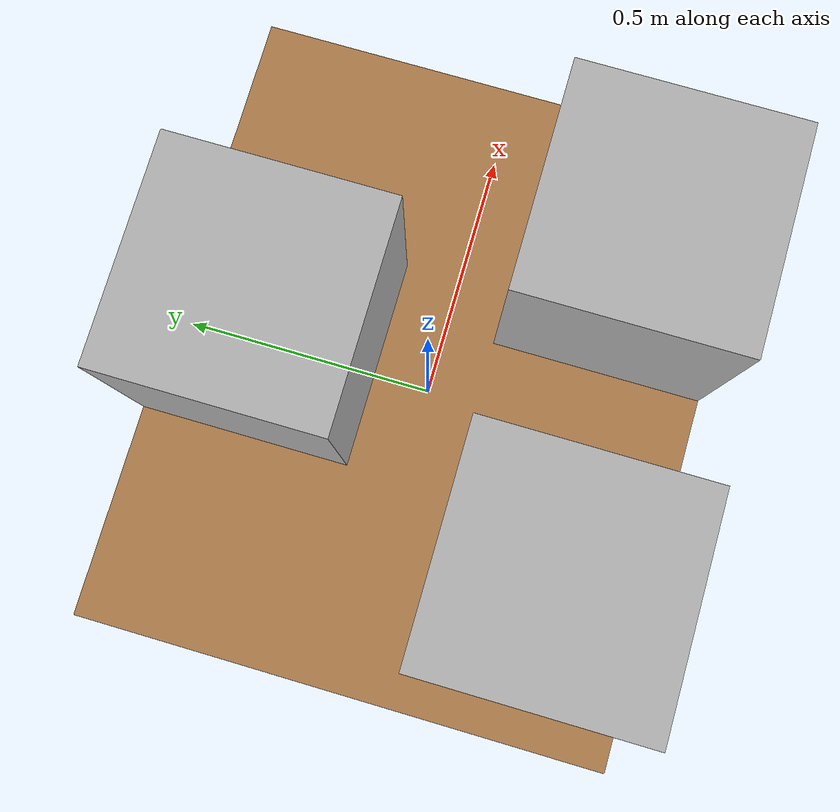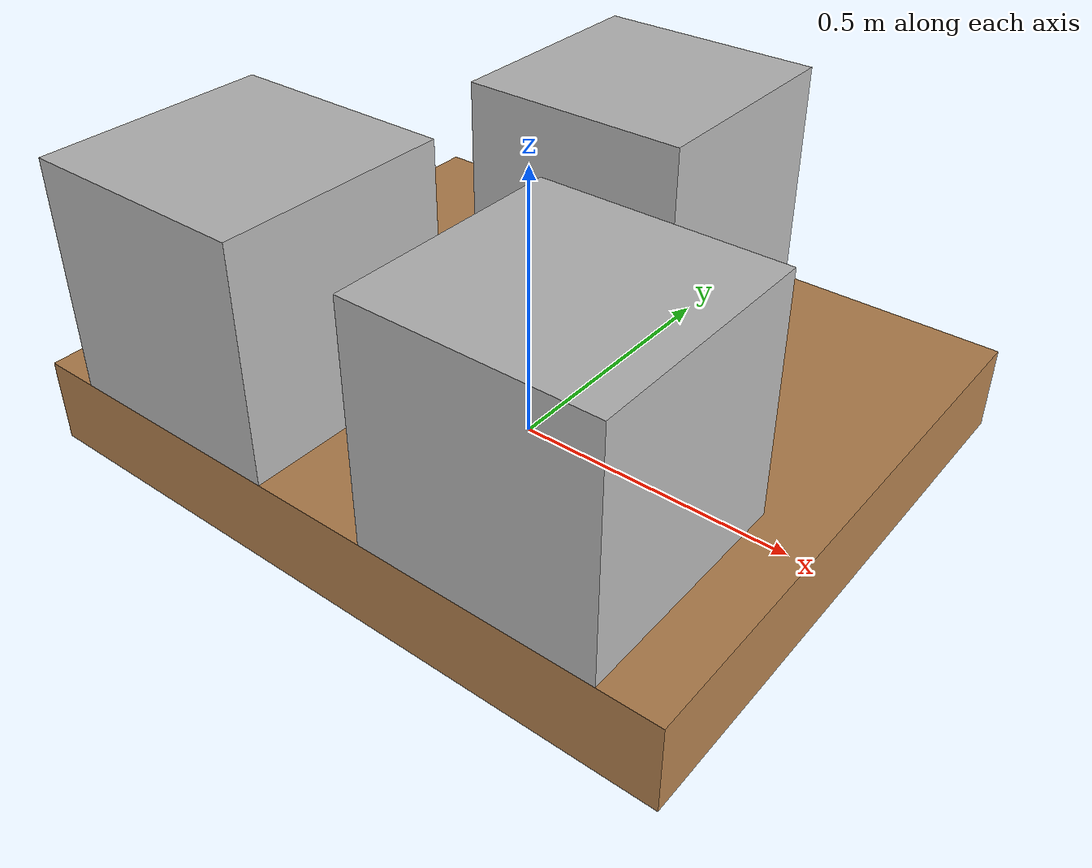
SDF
<?xml version="1.0" ?>
<sdf version="1.6">
  <model name="wooden_pallet_with_boxes">
    <static>true</static>

    <link name="pallet">
      <visual name="pallet_visual">
        <geometry>
          <box>
            <size>1.2 1.0 0.15</size>
          </box>
        </geometry>
        <material>
          <script>
            <uri>model://wooden_pallet_with_boxes/textures</uri>
            <name>pallet_wood</name>
          </script>
        </material>
        <pose>0 0 0.075 0 0 0</pose>
      </visual>
      <collision name="pallet_collision">
        <geometry>
          <box>
            <size>1.2 1.0 0.15</size>
          </box>
        </geometry>
        <pose>0 0 0.075 0 0 0</pose>
      </collision>
    </link>

    <link name="box1">
      <visual name="box1_visual">
        <geometry>
          <box>
            <size>0.4 0.4 0.4</size>
          </box>
        </geometry>
        <material>
          <script>
            <uri>model://wooden_pallet_with_boxes/textures</uri>
            <name>box_texture</name>
          </script>
        </material>
        <pose>-0.3 -0.3 0.35 0 0 0</pose>
      </visual>
    </link>

    <link name="box2">
      <visual name="box2_visual">
        <geometry>
          <box>
            <size>0.4 0.4 0.4</size>
          </box>
        </geometry>
        <material>
          <script>
            <uri>model://wooden_pallet_with_boxes/textures</uri>
            <name>box_texture</name>
          </script>
        </material>
        <pose>0.3 -0.3 0.35 0 0 0</pose>
      </visual>
    </link>

    <link name="box3">
      <visual name="box3_visual">
        <geometry>
          <box>
            <size>0.4 0.4 0.4</size>
          </box>
        </geometry>
        <material>
          <script>
            <uri>model://wooden_pallet_with_boxes/textures</uri>
            <name>box_texture</name>
          </script>
        </material>
        <pose>0.0 0.3 0.35 0 0 0</pose>
      </visual>
    </link>
  </model>
</sdf>
